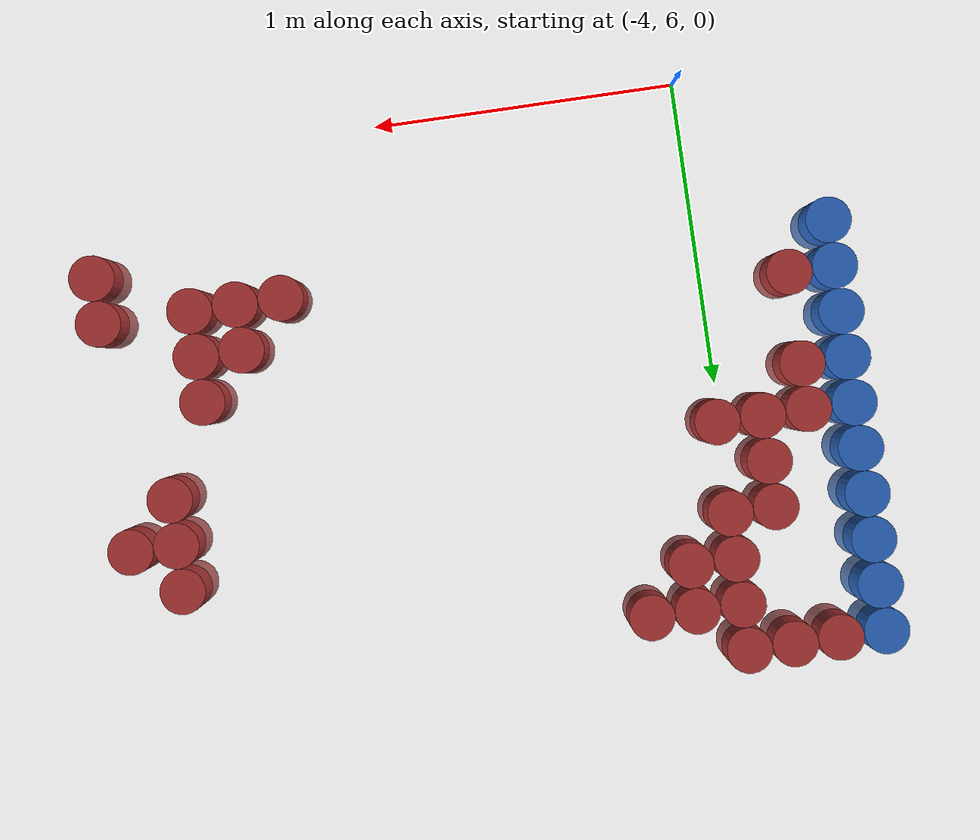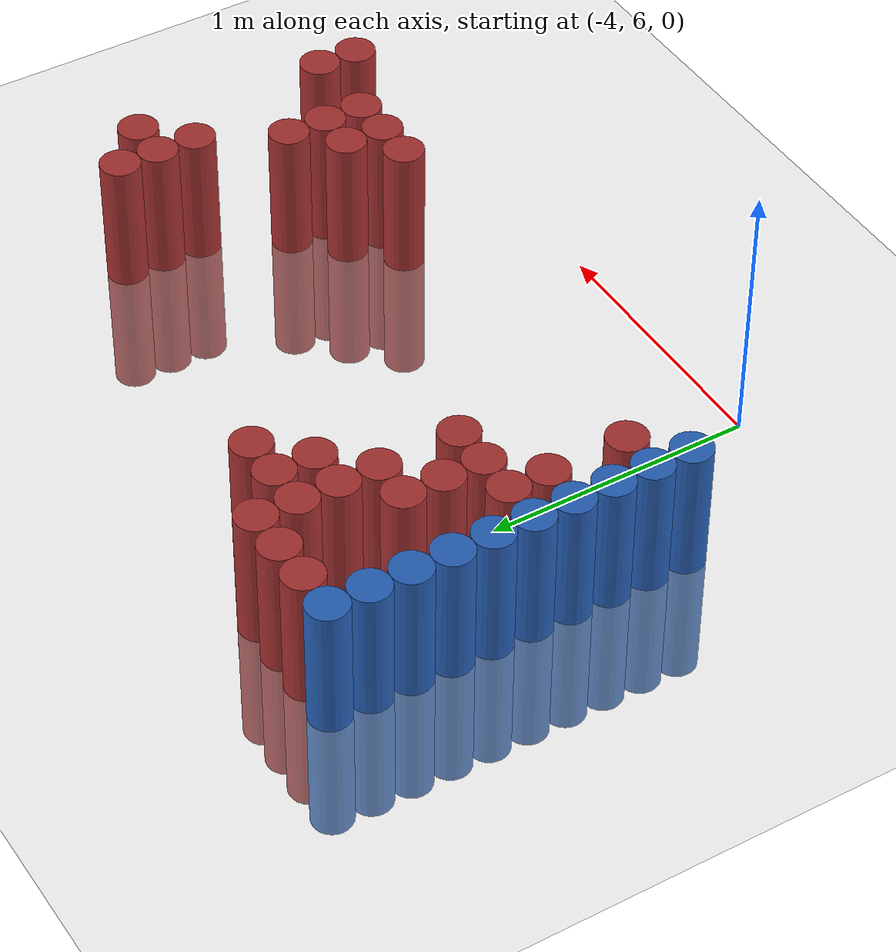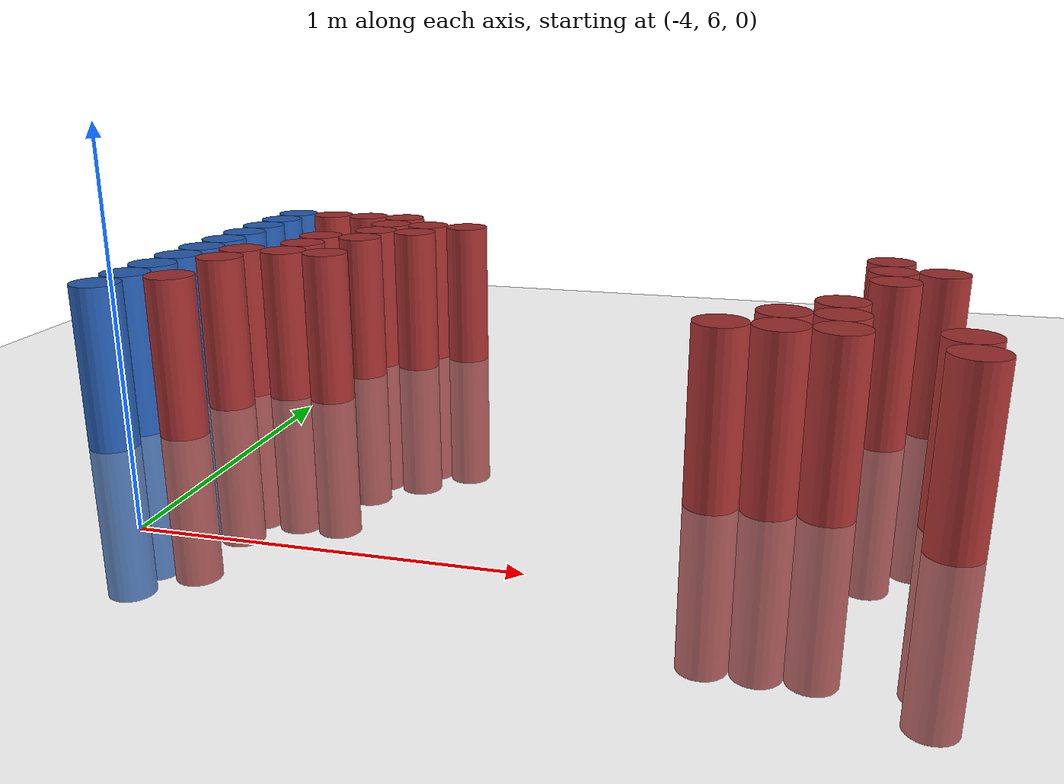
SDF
<sdf version="1.6">
 <world name="default">
  <model name="ground_plane">
   <static>1</static>
   <link name="link">
    <collision name="collision">
     <geometry><plane><normal>0 0 1</normal><size>100 100</size></plane></geometry>
     <surface><friction><ode><mu>100</mu><mu2>50</mu2></ode></friction></surface>
    </collision>
    <visual name="visual">
     <cast_shadows>0</cast_shadows>
     <geometry><plane><normal>0 0 1</normal><size>100 100</size></plane></geometry>
     <material>
      <script><uri>file://media/materials/scripts/gazebo.material</uri><name>Gazebo/Grey</name></script>
     </material>
    </visual>
   </link>
  </model>
  <model name="unit_cylinder_105">
   <static>1</static>
   <pose>-4.425000 6.525000 0.000000 0.000000 0.000000 0.000000</pose>
   <link name="link">
    <inertial>
     <mass>1</mass>
     <inertia><ixx>0.145833</ixx><ixy>0</ixy><ixz>0</ixz><iyy>0.145833</iyy><iyz>0</iyz><izz>0.125</izz></inertia>
    </inertial>
    <collision name="collision">
     <geometry><cylinder><radius>0.075000</radius><length>1</length></cylinder></geometry>
    </collision>
    <visual name="visual">
     <geometry><cylinder><radius>0.075000</radius><length>1</length></cylinder></geometry>
     <material>
      <ambient>0.152000 0.379000 0.720000 1</ambient>
      <diffuse>0.152000 0.379000 0.720000 1</diffuse>
     </material>
     <material>
      <script><name>Gazebo/Grey</name><uri>file://media/materials/scripts/gazebo.material</uri></script>
     </material>
    </visual>
    <sensor name="sensor_contact" type="contact"><contact><collision>collision</collision></contact></sensor>
   </link>
   <plugin filename="gz-sim-touchplugin-system" name="gz::sim::systems::TouchPlugin">
    <target>robot</target>
    <namespace>robot</namespace>
    <time>0.001</time>
    <enabled>true</enabled>
   </plugin>
  </model>
  <model name="unit_cylinder_106">
   <static>1</static>
   <pose>-4.425000 6.675000 0.000000 0.000000 0.000000 0.000000</pose>
   <link name="link">
    <inertial>
     <mass>1</mass>
     <inertia><ixx>0.145833</ixx><ixy>0</ixy><ixz>0</ixz><iyy>0.145833</iyy><iyz>0</iyz><izz>0.125</izz></inertia>
    </inertial>
    <collision name="collision">
     <geometry><cylinder><radius>0.075000</radius><length>1</length></cylinder></geometry>
    </collision>
    <visual name="visual">
     <geometry><cylinder><radius>0.075000</radius><length>1</length></cylinder></geometry>
     <material>
      <ambient>0.152000 0.379000 0.720000 1</ambient>
      <diffuse>0.152000 0.379000 0.720000 1</diffuse>
     </material>
     <material>
      <script><name>Gazebo/Grey</name><uri>file://media/materials/scripts/gazebo.material</uri></script>
     </material>
    </visual>
    <sensor name="sensor_contact" type="contact"><contact><collision>collision</collision></contact></sensor>
   </link>
   <plugin filename="gz-sim-touchplugin-system" name="gz::sim::systems::TouchPlugin">
    <target>robot</target>
    <namespace>robot</namespace>
    <time>0.001</time>
    <enabled>true</enabled>
   </plugin>
  </model>
  <model name="unit_cylinder_107">
   <static>1</static>
   <pose>-4.425000 6.825000 0.000000 0.000000 0.000000 0.000000</pose>
   <link name="link">
    <inertial>
     <mass>1</mass>
     <inertia><ixx>0.145833</ixx><ixy>0</ixy><ixz>0</ixz><iyy>0.145833</iyy><iyz>0</iyz><izz>0.125</izz></inertia>
    </inertial>
    <collision name="collision">
     <geometry><cylinder><radius>0.075000</radius><length>1</length></cylinder></geometry>
    </collision>
    <visual name="visual">
     <geometry><cylinder><radius>0.075000</radius><length>1</length></cylinder></geometry>
     <material>
      <ambient>0.152000 0.379000 0.720000 1</ambient>
      <diffuse>0.152000 0.379000 0.720000 1</diffuse>
     </material>
     <material>
      <script><name>Gazebo/Grey</name><uri>file://media/materials/scripts/gazebo.material</uri></script>
     </material>
    </visual>
    <sensor name="sensor_contact" type="contact"><contact><collision>collision</collision></contact></sensor>
   </link>
   <plugin filename="gz-sim-touchplugin-system" name="gz::sim::systems::TouchPlugin">
    <target>robot</target>
    <namespace>robot</namespace>
    <time>0.001</time>
    <enabled>true</enabled>
   </plugin>
  </model>
  <model name="unit_cylinder_108">
   <static>1</static>
   <pose>-4.425000 6.975000 0.000000 0.000000 0.000000 0.000000</pose>
   <link name="link">
    <inertial>
     <mass>1</mass>
     <inertia><ixx>0.145833</ixx><ixy>0</ixy><ixz>0</ixz><iyy>0.145833</iyy><iyz>0</iyz><izz>0.125</izz></inertia>
    </inertial>
    <collision name="collision">
     <geometry><cylinder><radius>0.075000</radius><length>1</length></cylinder></geometry>
    </collision>
    <visual name="visual">
     <geometry><cylinder><radius>0.075000</radius><length>1</length></cylinder></geometry>
     <material>
      <ambient>0.152000 0.379000 0.720000 1</ambient>
      <diffuse>0.152000 0.379000 0.720000 1</diffuse>
     </material>
     <material>
      <script><name>Gazebo/Grey</name><uri>file://media/materials/scripts/gazebo.material</uri></script>
     </material>
    </visual>
    <sensor name="sensor_contact" type="contact"><contact><collision>collision</collision></contact></sensor>
   </link>
   <plugin filename="gz-sim-touchplugin-system" name="gz::sim::systems::TouchPlugin">
    <target>robot</target>
    <namespace>robot</namespace>
    <time>0.001</time>
    <enabled>true</enabled>
   </plugin>
  </model>
  <model name="unit_cylinder_109">
   <static>1</static>
   <pose>-4.425000 7.125000 0.000000 0.000000 0.000000 0.000000</pose>
   <link name="link">
    <inertial>
     <mass>1</mass>
     <inertia><ixx>0.145833</ixx><ixy>0</ixy><ixz>0</ixz><iyy>0.145833</iyy><iyz>0</iyz><izz>0.125</izz></inertia>
    </inertial>
    <collision name="collision">
     <geometry><cylinder><radius>0.075000</radius><length>1</length></cylinder></geometry>
    </collision>
    <visual name="visual">
     <geometry><cylinder><radius>0.075000</radius><length>1</length></cylinder></geometry>
     <material>
      <ambient>0.152000 0.379000 0.720000 1</ambient>
      <diffuse>0.152000 0.379000 0.720000 1</diffuse>
     </material>
     <material>
      <script><name>Gazebo/Grey</name><uri>file://media/materials/scripts/gazebo.material</uri></script>
     </material>
    </visual>
    <sensor name="sensor_contact" type="contact"><contact><collision>collision</collision></contact></sensor>
   </link>
   <plugin filename="gz-sim-touchplugin-system" name="gz::sim::systems::TouchPlugin">
    <target>robot</target>
    <namespace>robot</namespace>
    <time>0.001</time>
    <enabled>true</enabled>
   </plugin>
  </model>
  <model name="unit_cylinder_110">
   <static>1</static>
   <pose>-4.425000 7.275000 0.000000 0.000000 0.000000 0.000000</pose>
   <link name="link">
    <inertial>
     <mass>1</mass>
     <inertia><ixx>0.145833</ixx><ixy>0</ixy><ixz>0</ixz><iyy>0.145833</iyy><iyz>0</iyz><izz>0.125</izz></inertia>
    </inertial>
    <collision name="collision">
     <geometry><cylinder><radius>0.075000</radius><length>1</length></cylinder></geometry>
    </collision>
    <visual name="visual">
     <geometry><cylinder><radius>0.075000</radius><length>1</length></cylinder></geometry>
     <material>
      <ambient>0.152000 0.379000 0.720000 1</ambient>
      <diffuse>0.152000 0.379000 0.720000 1</diffuse>
     </material>
     <material>
      <script><name>Gazebo/Grey</name><uri>file://media/materials/scripts/gazebo.material</uri></script>
     </material>
    </visual>
    <sensor name="sensor_contact" type="contact"><contact><collision>collision</collision></contact></sensor>
   </link>
   <plugin filename="gz-sim-touchplugin-system" name="gz::sim::systems::TouchPlugin">
    <target>robot</target>
    <namespace>robot</namespace>
    <time>0.001</time>
    <enabled>true</enabled>
   </plugin>
  </model>
  <model name="unit_cylinder_111">
   <static>1</static>
   <pose>-4.425000 7.425000 0.000000 0.000000 0.000000 0.000000</pose>
   <link name="link">
    <inertial>
     <mass>1</mass>
     <inertia><ixx>0.145833</ixx><ixy>0</ixy><ixz>0</ixz><iyy>0.145833</iyy><iyz>0</iyz><izz>0.125</izz></inertia>
    </inertial>
    <collision name="collision">
     <geometry><cylinder><radius>0.075000</radius><length>1</length></cylinder></geometry>
    </collision>
    <visual name="visual">
     <geometry><cylinder><radius>0.075000</radius><length>1</length></cylinder></geometry>
     <material>
      <ambient>0.152000 0.379000 0.720000 1</ambient>
      <diffuse>0.152000 0.379000 0.720000 1</diffuse>
     </material>
     <material>
      <script><name>Gazebo/Grey</name><uri>file://media/materials/scripts/gazebo.material</uri></script>
     </material>
    </visual>
    <sensor name="sensor_contact" type="contact"><contact><collision>collision</collision></contact></sensor>
   </link>
   <plugin filename="gz-sim-touchplugin-system" name="gz::sim::systems::TouchPlugin">
    <target>robot</target>
    <namespace>robot</namespace>
    <time>0.001</time>
    <enabled>true</enabled>
   </plugin>
  </model>
  <model name="unit_cylinder_112">
   <static>1</static>
   <pose>-4.425000 7.575000 0.000000 0.000000 0.000000 0.000000</pose>
   <link name="link">
    <inertial>
     <mass>1</mass>
     <inertia><ixx>0.145833</ixx><ixy>0</ixy><ixz>0</ixz><iyy>0.145833</iyy><iyz>0</iyz><izz>0.125</izz></inertia>
    </inertial>
    <collision name="collision">
     <geometry><cylinder><radius>0.075000</radius><length>1</length></cylinder></geometry>
    </collision>
    <visual name="visual">
     <geometry><cylinder><radius>0.075000</radius><length>1</length></cylinder></geometry>
     <material>
      <ambient>0.152000 0.379000 0.720000 1</ambient>
      <diffuse>0.152000 0.379000 0.720000 1</diffuse>
     </material>
     <material>
      <script><name>Gazebo/Grey</name><uri>file://media/materials/scripts/gazebo.material</uri></script>
     </material>
    </visual>
    <sensor name="sensor_contact" type="contact"><contact><collision>collision</collision></contact></sensor>
   </link>
   <plugin filename="gz-sim-touchplugin-system" name="gz::sim::systems::TouchPlugin">
    <target>robot</target>
    <namespace>robot</namespace>
    <time>0.001</time>
    <enabled>true</enabled>
   </plugin>
  </model>
  <model name="unit_cylinder_113">
   <static>1</static>
   <pose>-4.425000 7.725000 0.000000 0.000000 0.000000 0.000000</pose>
   <link name="link">
    <inertial>
     <mass>1</mass>
     <inertia><ixx>0.145833</ixx><ixy>0</ixy><ixz>0</ixz><iyy>0.145833</iyy><iyz>0</iyz><izz>0.125</izz></inertia>
    </inertial>
    <collision name="collision">
     <geometry><cylinder><radius>0.075000</radius><length>1</length></cylinder></geometry>
    </collision>
    <visual name="visual">
     <geometry><cylinder><radius>0.075000</radius><length>1</length></cylinder></geometry>
     <material>
      <ambient>0.152000 0.379000 0.720000 1</ambient>
      <diffuse>0.152000 0.379000 0.720000 1</diffuse>
     </material>
     <material>
      <script><name>Gazebo/Grey</name><uri>file://media/materials/scripts/gazebo.material</uri></script>
     </material>
    </visual>
    <sensor name="sensor_contact" type="contact"><contact><collision>collision</collision></contact></sensor>
   </link>
   <plugin filename="gz-sim-touchplugin-system" name="gz::sim::systems::TouchPlugin">
    <target>robot</target>
    <namespace>robot</namespace>
    <time>0.001</time>
    <enabled>true</enabled>
   </plugin>
  </model>
  <model name="unit_cylinder_114">
   <static>1</static>
   <pose>-4.425000 7.875000 0.000000 0.000000 0.000000 0.000000</pose>
   <link name="link">
    <inertial>
     <mass>1</mass>
     <inertia><ixx>0.145833</ixx><ixy>0</ixy><ixz>0</ixz><iyy>0.145833</iyy><iyz>0</iyz><izz>0.125</izz></inertia>
    </inertial>
    <collision name="collision">
     <geometry><cylinder><radius>0.075000</radius><length>1</length></cylinder></geometry>
    </collision>
    <visual name="visual">
     <geometry><cylinder><radius>0.075000</radius><length>1</length></cylinder></geometry>
     <material>
      <ambient>0.152000 0.379000 0.720000 1</ambient>
      <diffuse>0.152000 0.379000 0.720000 1</diffuse>
     </material>
     <material>
      <script><name>Gazebo/Grey</name><uri>file://media/materials/scripts/gazebo.material</uri></script>
     </material>
    </visual>
    <sensor name="sensor_contact" type="contact"><contact><collision>collision</collision></contact></sensor>
   </link>
   <plugin filename="gz-sim-touchplugin-system" name="gz::sim::systems::TouchPlugin">
    <target>robot</target>
    <namespace>robot</namespace>
    <time>0.001</time>
    <enabled>true</enabled>
   </plugin>
  </model>
  <model name="unit_cylinder_127">
   <static>1</static>
   <pose>-4.275000 6.675000 0.000000 0.000000 0.000000 0.000000</pose>
   <link name="link">
    <inertial>
     <mass>1</mass>
     <inertia><ixx>0.145833</ixx><ixy>0</ixy><ixz>0</ixz><iyy>0.145833</iyy><iyz>0</iyz><izz>0.125</izz></inertia>
    </inertial>
    <collision name="collision">
     <geometry><cylinder><radius>0.075000</radius><length>1</length></cylinder></geometry>
    </collision>
    <visual name="visual">
     <geometry><cylinder><radius>0.075000</radius><length>1</length></cylinder></geometry>
     <material>
      <ambient>0.648000 0.192000 0.192000 1</ambient>
      <diffuse>0.648000 0.192000 0.192000 1</diffuse>
     </material>
     <material>
      <script><name>Gazebo/Grey</name><uri>file://media/materials/scripts/gazebo.material</uri></script>
     </material>
    </visual>
    <sensor name="sensor_contact" type="contact"><contact><collision>collision</collision></contact></sensor>
   </link>
   <plugin filename="gz-sim-touchplugin-system" name="gz::sim::systems::TouchPlugin">
    <target>robot</target>
    <namespace>robot</namespace>
    <time>0.001</time>
    <enabled>true</enabled>
   </plugin>
  </model>
  <model name="unit_cylinder_128">
   <static>1</static>
   <pose>-4.275000 6.975000 0.000000 0.000000 0.000000 0.000000</pose>
   <link name="link">
    <inertial>
     <mass>1</mass>
     <inertia><ixx>0.145833</ixx><ixy>0</ixy><ixz>0</ixz><iyy>0.145833</iyy><iyz>0</iyz><izz>0.125</izz></inertia>
    </inertial>
    <collision name="collision">
     <geometry><cylinder><radius>0.075000</radius><length>1</length></cylinder></geometry>
    </collision>
    <visual name="visual">
     <geometry><cylinder><radius>0.075000</radius><length>1</length></cylinder></geometry>
     <material>
      <ambient>0.648000 0.192000 0.192000 1</ambient>
      <diffuse>0.648000 0.192000 0.192000 1</diffuse>
     </material>
     <material>
      <script><name>Gazebo/Grey</name><uri>file://media/materials/scripts/gazebo.material</uri></script>
     </material>
    </visual>
    <sensor name="sensor_contact" type="contact"><contact><collision>collision</collision></contact></sensor>
   </link>
   <plugin filename="gz-sim-touchplugin-system" name="gz::sim::systems::TouchPlugin">
    <target>robot</target>
    <namespace>robot</namespace>
    <time>0.001</time>
    <enabled>true</enabled>
   </plugin>
  </model>
  <model name="unit_cylinder_129">
   <static>1</static>
   <pose>-4.275000 7.125000 0.000000 0.000000 0.000000 0.000000</pose>
   <link name="link">
    <inertial>
     <mass>1</mass>
     <inertia><ixx>0.145833</ixx><ixy>0</ixy><ixz>0</ixz><iyy>0.145833</iyy><iyz>0</iyz><izz>0.125</izz></inertia>
    </inertial>
    <collision name="collision">
     <geometry><cylinder><radius>0.075000</radius><length>1</length></cylinder></geometry>
    </collision>
    <visual name="visual">
     <geometry><cylinder><radius>0.075000</radius><length>1</length></cylinder></geometry>
     <material>
      <ambient>0.648000 0.192000 0.192000 1</ambient>
      <diffuse>0.648000 0.192000 0.192000 1</diffuse>
     </material>
     <material>
      <script><name>Gazebo/Grey</name><uri>file://media/materials/scripts/gazebo.material</uri></script>
     </material>
    </visual>
    <sensor name="sensor_contact" type="contact"><contact><collision>collision</collision></contact></sensor>
   </link>
   <plugin filename="gz-sim-touchplugin-system" name="gz::sim::systems::TouchPlugin">
    <target>robot</target>
    <namespace>robot</namespace>
    <time>0.001</time>
    <enabled>true</enabled>
   </plugin>
  </model>
  <model name="unit_cylinder_130">
   <static>1</static>
   <pose>-4.275000 7.875000 0.000000 0.000000 0.000000 0.000000</pose>
   <link name="link">
    <inertial>
     <mass>1</mass>
     <inertia><ixx>0.145833</ixx><ixy>0</ixy><ixz>0</ixz><iyy>0.145833</iyy><iyz>0</iyz><izz>0.125</izz></inertia>
    </inertial>
    <collision name="collision">
     <geometry><cylinder><radius>0.075000</radius><length>1</length></cylinder></geometry>
    </collision>
    <visual name="visual">
     <geometry><cylinder><radius>0.075000</radius><length>1</length></cylinder></geometry>
     <material>
      <ambient>0.648000 0.192000 0.192000 1</ambient>
      <diffuse>0.648000 0.192000 0.192000 1</diffuse>
     </material>
     <material>
      <script><name>Gazebo/Grey</name><uri>file://media/materials/scripts/gazebo.material</uri></script>
     </material>
    </visual>
    <sensor name="sensor_contact" type="contact"><contact><collision>collision</collision></contact></sensor>
   </link>
   <plugin filename="gz-sim-touchplugin-system" name="gz::sim::systems::TouchPlugin">
    <target>robot</target>
    <namespace>robot</namespace>
    <time>0.001</time>
    <enabled>true</enabled>
   </plugin>
  </model>
  <model name="unit_cylinder_136">
   <static>1</static>
   <pose>-4.125000 7.125000 0.000000 0.000000 0.000000 0.000000</pose>
   <link name="link">
    <inertial>
     <mass>1</mass>
     <inertia><ixx>0.145833</ixx><ixy>0</ixy><ixz>0</ixz><iyy>0.145833</iyy><iyz>0</iyz><izz>0.125</izz></inertia>
    </inertial>
    <collision name="collision">
     <geometry><cylinder><radius>0.075000</radius><length>1</length></cylinder></geometry>
    </collision>
    <visual name="visual">
     <geometry><cylinder><radius>0.075000</radius><length>1</length></cylinder></geometry>
     <material>
      <ambient>0.648000 0.192000 0.192000 1</ambient>
      <diffuse>0.648000 0.192000 0.192000 1</diffuse>
     </material>
     <material>
      <script><name>Gazebo/Grey</name><uri>file://media/materials/scripts/gazebo.material</uri></script>
     </material>
    </visual>
    <sensor name="sensor_contact" type="contact"><contact><collision>collision</collision></contact></sensor>
   </link>
   <plugin filename="gz-sim-touchplugin-system" name="gz::sim::systems::TouchPlugin">
    <target>robot</target>
    <namespace>robot</namespace>
    <time>0.001</time>
    <enabled>true</enabled>
   </plugin>
  </model>
  <model name="unit_cylinder_137">
   <static>1</static>
   <pose>-4.125000 7.275000 0.000000 0.000000 0.000000 0.000000</pose>
   <link name="link">
    <inertial>
     <mass>1</mass>
     <inertia><ixx>0.145833</ixx><ixy>0</ixy><ixz>0</ixz><iyy>0.145833</iyy><iyz>0</iyz><izz>0.125</izz></inertia>
    </inertial>
    <collision name="collision">
     <geometry><cylinder><radius>0.075000</radius><length>1</length></cylinder></geometry>
    </collision>
    <visual name="visual">
     <geometry><cylinder><radius>0.075000</radius><length>1</length></cylinder></geometry>
     <material>
      <ambient>0.648000 0.192000 0.192000 1</ambient>
      <diffuse>0.648000 0.192000 0.192000 1</diffuse>
     </material>
     <material>
      <script><name>Gazebo/Grey</name><uri>file://media/materials/scripts/gazebo.material</uri></script>
     </material>
    </visual>
    <sensor name="sensor_contact" type="contact"><contact><collision>collision</collision></contact></sensor>
   </link>
   <plugin filename="gz-sim-touchplugin-system" name="gz::sim::systems::TouchPlugin">
    <target>robot</target>
    <namespace>robot</namespace>
    <time>0.001</time>
    <enabled>true</enabled>
   </plugin>
  </model>
  <model name="unit_cylinder_138">
   <static>1</static>
   <pose>-4.125000 7.425000 0.000000 0.000000 0.000000 0.000000</pose>
   <link name="link">
    <inertial>
     <mass>1</mass>
     <inertia><ixx>0.145833</ixx><ixy>0</ixy><ixz>0</ixz><iyy>0.145833</iyy><iyz>0</iyz><izz>0.125</izz></inertia>
    </inertial>
    <collision name="collision">
     <geometry><cylinder><radius>0.075000</radius><length>1</length></cylinder></geometry>
    </collision>
    <visual name="visual">
     <geometry><cylinder><radius>0.075000</radius><length>1</length></cylinder></geometry>
     <material>
      <ambient>0.648000 0.192000 0.192000 1</ambient>
      <diffuse>0.648000 0.192000 0.192000 1</diffuse>
     </material>
     <material>
      <script><name>Gazebo/Grey</name><uri>file://media/materials/scripts/gazebo.material</uri></script>
     </material>
    </visual>
    <sensor name="sensor_contact" type="contact"><contact><collision>collision</collision></contact></sensor>
   </link>
   <plugin filename="gz-sim-touchplugin-system" name="gz::sim::systems::TouchPlugin">
    <target>robot</target>
    <namespace>robot</namespace>
    <time>0.001</time>
    <enabled>true</enabled>
   </plugin>
  </model>
  <model name="unit_cylinder_139">
   <static>1</static>
   <pose>-4.125000 7.875000 0.000000 0.000000 0.000000 0.000000</pose>
   <link name="link">
    <inertial>
     <mass>1</mass>
     <inertia><ixx>0.145833</ixx><ixy>0</ixy><ixz>0</ixz><iyy>0.145833</iyy><iyz>0</iyz><izz>0.125</izz></inertia>
    </inertial>
    <collision name="collision">
     <geometry><cylinder><radius>0.075000</radius><length>1</length></cylinder></geometry>
    </collision>
    <visual name="visual">
     <geometry><cylinder><radius>0.075000</radius><length>1</length></cylinder></geometry>
     <material>
      <ambient>0.648000 0.192000 0.192000 1</ambient>
      <diffuse>0.648000 0.192000 0.192000 1</diffuse>
     </material>
     <material>
      <script><name>Gazebo/Grey</name><uri>file://media/materials/scripts/gazebo.material</uri></script>
     </material>
    </visual>
    <sensor name="sensor_contact" type="contact"><contact><collision>collision</collision></contact></sensor>
   </link>
   <plugin filename="gz-sim-touchplugin-system" name="gz::sim::systems::TouchPlugin">
    <target>robot</target>
    <namespace>robot</namespace>
    <time>0.001</time>
    <enabled>true</enabled>
   </plugin>
  </model>
  <model name="unit_cylinder_140">
   <static>1</static>
   <pose>-3.975000 7.125000 0.000000 0.000000 0.000000 0.000000</pose>
   <link name="link">
    <inertial>
     <mass>1</mass>
     <inertia><ixx>0.145833</ixx><ixy>0</ixy><ixz>0</ixz><iyy>0.145833</iyy><iyz>0</iyz><izz>0.125</izz></inertia>
    </inertial>
    <collision name="collision">
     <geometry><cylinder><radius>0.075000</radius><length>1</length></cylinder></geometry>
    </collision>
    <visual name="visual">
     <geometry><cylinder><radius>0.075000</radius><length>1</length></cylinder></geometry>
     <material>
      <ambient>0.648000 0.192000 0.192000 1</ambient>
      <diffuse>0.648000 0.192000 0.192000 1</diffuse>
     </material>
     <material>
      <script><name>Gazebo/Grey</name><uri>file://media/materials/scripts/gazebo.material</uri></script>
     </material>
    </visual>
    <sensor name="sensor_contact" type="contact"><contact><collision>collision</collision></contact></sensor>
   </link>
   <plugin filename="gz-sim-touchplugin-system" name="gz::sim::systems::TouchPlugin">
    <target>robot</target>
    <namespace>robot</namespace>
    <time>0.001</time>
    <enabled>true</enabled>
   </plugin>
  </model>
  <model name="unit_cylinder_141">
   <static>1</static>
   <pose>-3.975000 7.425000 0.000000 0.000000 0.000000 0.000000</pose>
   <link name="link">
    <inertial>
     <mass>1</mass>
     <inertia><ixx>0.145833</ixx><ixy>0</ixy><ixz>0</ixz><iyy>0.145833</iyy><iyz>0</iyz><izz>0.125</izz></inertia>
    </inertial>
    <collision name="collision">
     <geometry><cylinder><radius>0.075000</radius><length>1</length></cylinder></geometry>
    </collision>
    <visual name="visual">
     <geometry><cylinder><radius>0.075000</radius><length>1</length></cylinder></geometry>
     <material>
      <ambient>0.648000 0.192000 0.192000 1</ambient>
      <diffuse>0.648000 0.192000 0.192000 1</diffuse>
     </material>
     <material>
      <script><name>Gazebo/Grey</name><uri>file://media/materials/scripts/gazebo.material</uri></script>
     </material>
    </visual>
    <sensor name="sensor_contact" type="contact"><contact><collision>collision</collision></contact></sensor>
   </link>
   <plugin filename="gz-sim-touchplugin-system" name="gz::sim::systems::TouchPlugin">
    <target>robot</target>
    <namespace>robot</namespace>
    <time>0.001</time>
    <enabled>true</enabled>
   </plugin>
  </model>
  <model name="unit_cylinder_142">
   <static>1</static>
   <pose>-3.975000 7.575000 0.000000 0.000000 0.000000 0.000000</pose>
   <link name="link">
    <inertial>
     <mass>1</mass>
     <inertia><ixx>0.145833</ixx><ixy>0</ixy><ixz>0</ixz><iyy>0.145833</iyy><iyz>0</iyz><izz>0.125</izz></inertia>
    </inertial>
    <collision name="collision">
     <geometry><cylinder><radius>0.075000</radius><length>1</length></cylinder></geometry>
    </collision>
    <visual name="visual">
     <geometry><cylinder><radius>0.075000</radius><length>1</length></cylinder></geometry>
     <material>
      <ambient>0.648000 0.192000 0.192000 1</ambient>
      <diffuse>0.648000 0.192000 0.192000 1</diffuse>
     </material>
     <material>
      <script><name>Gazebo/Grey</name><uri>file://media/materials/scripts/gazebo.material</uri></script>
     </material>
    </visual>
    <sensor name="sensor_contact" type="contact"><contact><collision>collision</collision></contact></sensor>
   </link>
   <plugin filename="gz-sim-touchplugin-system" name="gz::sim::systems::TouchPlugin">
    <target>robot</target>
    <namespace>robot</namespace>
    <time>0.001</time>
    <enabled>true</enabled>
   </plugin>
  </model>
  <model name="unit_cylinder_143">
   <static>1</static>
   <pose>-3.975000 7.725000 0.000000 0.000000 0.000000 0.000000</pose>
   <link name="link">
    <inertial>
     <mass>1</mass>
     <inertia><ixx>0.145833</ixx><ixy>0</ixy><ixz>0</ixz><iyy>0.145833</iyy><iyz>0</iyz><izz>0.125</izz></inertia>
    </inertial>
    <collision name="collision">
     <geometry><cylinder><radius>0.075000</radius><length>1</length></cylinder></geometry>
    </collision>
    <visual name="visual">
     <geometry><cylinder><radius>0.075000</radius><length>1</length></cylinder></geometry>
     <material>
      <ambient>0.648000 0.192000 0.192000 1</ambient>
      <diffuse>0.648000 0.192000 0.192000 1</diffuse>
     </material>
     <material>
      <script><name>Gazebo/Grey</name><uri>file://media/materials/scripts/gazebo.material</uri></script>
     </material>
    </visual>
    <sensor name="sensor_contact" type="contact"><contact><collision>collision</collision></contact></sensor>
   </link>
   <plugin filename="gz-sim-touchplugin-system" name="gz::sim::systems::TouchPlugin">
    <target>robot</target>
    <namespace>robot</namespace>
    <time>0.001</time>
    <enabled>true</enabled>
   </plugin>
  </model>
  <model name="unit_cylinder_144">
   <static>1</static>
   <pose>-3.975000 7.875000 0.000000 0.000000 0.000000 0.000000</pose>
   <link name="link">
    <inertial>
     <mass>1</mass>
     <inertia><ixx>0.145833</ixx><ixy>0</ixy><ixz>0</ixz><iyy>0.145833</iyy><iyz>0</iyz><izz>0.125</izz></inertia>
    </inertial>
    <collision name="collision">
     <geometry><cylinder><radius>0.075000</radius><length>1</length></cylinder></geometry>
    </collision>
    <visual name="visual">
     <geometry><cylinder><radius>0.075000</radius><length>1</length></cylinder></geometry>
     <material>
      <ambient>0.648000 0.192000 0.192000 1</ambient>
      <diffuse>0.648000 0.192000 0.192000 1</diffuse>
     </material>
     <material>
      <script><name>Gazebo/Grey</name><uri>file://media/materials/scripts/gazebo.material</uri></script>
     </material>
    </visual>
    <sensor name="sensor_contact" type="contact"><contact><collision>collision</collision></contact></sensor>
   </link>
   <plugin filename="gz-sim-touchplugin-system" name="gz::sim::systems::TouchPlugin">
    <target>robot</target>
    <namespace>robot</namespace>
    <time>0.001</time>
    <enabled>true</enabled>
   </plugin>
  </model>
  <model name="unit_cylinder_145">
   <static>1</static>
   <pose>-3.825000 7.575000 0.000000 0.000000 0.000000 0.000000</pose>
   <link name="link">
    <inertial>
     <mass>1</mass>
     <inertia><ixx>0.145833</ixx><ixy>0</ixy><ixz>0</ixz><iyy>0.145833</iyy><iyz>0</iyz><izz>0.125</izz></inertia>
    </inertial>
    <collision name="collision">
     <geometry><cylinder><radius>0.075000</radius><length>1</length></cylinder></geometry>
    </collision>
    <visual name="visual">
     <geometry><cylinder><radius>0.075000</radius><length>1</length></cylinder></geometry>
     <material>
      <ambient>0.648000 0.192000 0.192000 1</ambient>
      <diffuse>0.648000 0.192000 0.192000 1</diffuse>
     </material>
     <material>
      <script><name>Gazebo/Grey</name><uri>file://media/materials/scripts/gazebo.material</uri></script>
     </material>
    </visual>
    <sensor name="sensor_contact" type="contact"><contact><collision>collision</collision></contact></sensor>
   </link>
   <plugin filename="gz-sim-touchplugin-system" name="gz::sim::systems::TouchPlugin">
    <target>robot</target>
    <namespace>robot</namespace>
    <time>0.001</time>
    <enabled>true</enabled>
   </plugin>
  </model>
  <model name="unit_cylinder_146">
   <static>1</static>
   <pose>-3.825000 7.725000 0.000000 0.000000 0.000000 0.000000</pose>
   <link name="link">
    <inertial>
     <mass>1</mass>
     <inertia><ixx>0.145833</ixx><ixy>0</ixy><ixz>0</ixz><iyy>0.145833</iyy><iyz>0</iyz><izz>0.125</izz></inertia>
    </inertial>
    <collision name="collision">
     <geometry><cylinder><radius>0.075000</radius><length>1</length></cylinder></geometry>
    </collision>
    <visual name="visual">
     <geometry><cylinder><radius>0.075000</radius><length>1</length></cylinder></geometry>
     <material>
      <ambient>0.648000 0.192000 0.192000 1</ambient>
      <diffuse>0.648000 0.192000 0.192000 1</diffuse>
     </material>
     <material>
      <script><name>Gazebo/Grey</name><uri>file://media/materials/scripts/gazebo.material</uri></script>
     </material>
    </visual>
    <sensor name="sensor_contact" type="contact"><contact><collision>collision</collision></contact></sensor>
   </link>
   <plugin filename="gz-sim-touchplugin-system" name="gz::sim::systems::TouchPlugin">
    <target>robot</target>
    <namespace>robot</namespace>
    <time>0.001</time>
    <enabled>true</enabled>
   </plugin>
  </model>
  <model name="unit_cylinder_148">
   <static>1</static>
   <pose>-3.675000 7.725000 0.000000 0.000000 0.000000 0.000000</pose>
   <link name="link">
    <inertial>
     <mass>1</mass>
     <inertia><ixx>0.145833</ixx><ixy>0</ixy><ixz>0</ixz><iyy>0.145833</iyy><iyz>0</iyz><izz>0.125</izz></inertia>
    </inertial>
    <collision name="collision">
     <geometry><cylinder><radius>0.075000</radius><length>1</length></cylinder></geometry>
    </collision>
    <visual name="visual">
     <geometry><cylinder><radius>0.075000</radius><length>1</length></cylinder></geometry>
     <material>
      <ambient>0.648000 0.192000 0.192000 1</ambient>
      <diffuse>0.648000 0.192000 0.192000 1</diffuse>
     </material>
     <material>
      <script><name>Gazebo/Grey</name><uri>file://media/materials/scripts/gazebo.material</uri></script>
     </material>
    </visual>
    <sensor name="sensor_contact" type="contact"><contact><collision>collision</collision></contact></sensor>
   </link>
   <plugin filename="gz-sim-touchplugin-system" name="gz::sim::systems::TouchPlugin">
    <target>robot</target>
    <namespace>robot</namespace>
    <time>0.001</time>
    <enabled>true</enabled>
   </plugin>
  </model>
  <model name="unit_cylinder_179">
   <static>1</static>
   <pose>-2.625000 6.525000 0.000000 0.000000 0.000000 0.000000</pose>
   <link name="link">
    <inertial>
     <mass>1</mass>
     <inertia><ixx>0.145833</ixx><ixy>0</ixy><ixz>0</ixz><iyy>0.145833</iyy><iyz>0</iyz><izz>0.125</izz></inertia>
    </inertial>
    <collision name="collision">
     <geometry><cylinder><radius>0.075000</radius><length>1</length></cylinder></geometry>
    </collision>
    <visual name="visual">
     <geometry><cylinder><radius>0.075000</radius><length>1</length></cylinder></geometry>
     <material>
      <ambient>0.648000 0.192000 0.192000 1</ambient>
      <diffuse>0.648000 0.192000 0.192000 1</diffuse>
     </material>
     <material>
      <script><name>Gazebo/Grey</name><uri>file://media/materials/scripts/gazebo.material</uri></script>
     </material>
    </visual>
    <sensor name="sensor_contact" type="contact"><contact><collision>collision</collision></contact></sensor>
   </link>
   <plugin filename="gz-sim-touchplugin-system" name="gz::sim::systems::TouchPlugin">
    <target>robot</target>
    <namespace>robot</namespace>
    <time>0.001</time>
    <enabled>true</enabled>
   </plugin>
  </model>
  <model name="unit_cylinder_182">
   <static>1</static>
   <pose>-2.475000 6.525000 0.000000 0.000000 0.000000 0.000000</pose>
   <link name="link">
    <inertial>
     <mass>1</mass>
     <inertia><ixx>0.145833</ixx><ixy>0</ixy><ixz>0</ixz><iyy>0.145833</iyy><iyz>0</iyz><izz>0.125</izz></inertia>
    </inertial>
    <collision name="collision">
     <geometry><cylinder><radius>0.075000</radius><length>1</length></cylinder></geometry>
    </collision>
    <visual name="visual">
     <geometry><cylinder><radius>0.075000</radius><length>1</length></cylinder></geometry>
     <material>
      <ambient>0.648000 0.192000 0.192000 1</ambient>
      <diffuse>0.648000 0.192000 0.192000 1</diffuse>
     </material>
     <material>
      <script><name>Gazebo/Grey</name><uri>file://media/materials/scripts/gazebo.material</uri></script>
     </material>
    </visual>
    <sensor name="sensor_contact" type="contact"><contact><collision>collision</collision></contact></sensor>
   </link>
   <plugin filename="gz-sim-touchplugin-system" name="gz::sim::systems::TouchPlugin">
    <target>robot</target>
    <namespace>robot</namespace>
    <time>0.001</time>
    <enabled>true</enabled>
   </plugin>
  </model>
  <model name="unit_cylinder_183">
   <static>1</static>
   <pose>-2.475000 6.675000 0.000000 0.000000 0.000000 0.000000</pose>
   <link name="link">
    <inertial>
     <mass>1</mass>
     <inertia><ixx>0.145833</ixx><ixy>0</ixy><ixz>0</ixz><iyy>0.145833</iyy><iyz>0</iyz><izz>0.125</izz></inertia>
    </inertial>
    <collision name="collision">
     <geometry><cylinder><radius>0.075000</radius><length>1</length></cylinder></geometry>
    </collision>
    <visual name="visual">
     <geometry><cylinder><radius>0.075000</radius><length>1</length></cylinder></geometry>
     <material>
      <ambient>0.648000 0.192000 0.192000 1</ambient>
      <diffuse>0.648000 0.192000 0.192000 1</diffuse>
     </material>
     <material>
      <script><name>Gazebo/Grey</name><uri>file://media/materials/scripts/gazebo.material</uri></script>
     </material>
    </visual>
    <sensor name="sensor_contact" type="contact"><contact><collision>collision</collision></contact></sensor>
   </link>
   <plugin filename="gz-sim-touchplugin-system" name="gz::sim::systems::TouchPlugin">
    <target>robot</target>
    <namespace>robot</namespace>
    <time>0.001</time>
    <enabled>true</enabled>
   </plugin>
  </model>
  <model name="unit_cylinder_185">
   <static>1</static>
   <pose>-2.325000 6.525000 0.000000 0.000000 0.000000 0.000000</pose>
   <link name="link">
    <inertial>
     <mass>1</mass>
     <inertia><ixx>0.145833</ixx><ixy>0</ixy><ixz>0</ixz><iyy>0.145833</iyy><iyz>0</iyz><izz>0.125</izz></inertia>
    </inertial>
    <collision name="collision">
     <geometry><cylinder><radius>0.075000</radius><length>1</length></cylinder></geometry>
    </collision>
    <visual name="visual">
     <geometry><cylinder><radius>0.075000</radius><length>1</length></cylinder></geometry>
     <material>
      <ambient>0.648000 0.192000 0.192000 1</ambient>
      <diffuse>0.648000 0.192000 0.192000 1</diffuse>
     </material>
     <material>
      <script><name>Gazebo/Grey</name><uri>file://media/materials/scripts/gazebo.material</uri></script>
     </material>
    </visual>
    <sensor name="sensor_contact" type="contact"><contact><collision>collision</collision></contact></sensor>
   </link>
   <plugin filename="gz-sim-touchplugin-system" name="gz::sim::systems::TouchPlugin">
    <target>robot</target>
    <namespace>robot</namespace>
    <time>0.001</time>
    <enabled>true</enabled>
   </plugin>
  </model>
  <model name="unit_cylinder_186">
   <static>1</static>
   <pose>-2.325000 6.675000 0.000000 0.000000 0.000000 0.000000</pose>
   <link name="link">
    <inertial>
     <mass>1</mass>
     <inertia><ixx>0.145833</ixx><ixy>0</ixy><ixz>0</ixz><iyy>0.145833</iyy><iyz>0</iyz><izz>0.125</izz></inertia>
    </inertial>
    <collision name="collision">
     <geometry><cylinder><radius>0.075000</radius><length>1</length></cylinder></geometry>
    </collision>
    <visual name="visual">
     <geometry><cylinder><radius>0.075000</radius><length>1</length></cylinder></geometry>
     <material>
      <ambient>0.648000 0.192000 0.192000 1</ambient>
      <diffuse>0.648000 0.192000 0.192000 1</diffuse>
     </material>
     <material>
      <script><name>Gazebo/Grey</name><uri>file://media/materials/scripts/gazebo.material</uri></script>
     </material>
    </visual>
    <sensor name="sensor_contact" type="contact"><contact><collision>collision</collision></contact></sensor>
   </link>
   <plugin filename="gz-sim-touchplugin-system" name="gz::sim::systems::TouchPlugin">
    <target>robot</target>
    <namespace>robot</namespace>
    <time>0.001</time>
    <enabled>true</enabled>
   </plugin>
  </model>
  <model name="unit_cylinder_187">
   <static>1</static>
   <pose>-2.325000 6.825000 0.000000 0.000000 0.000000 0.000000</pose>
   <link name="link">
    <inertial>
     <mass>1</mass>
     <inertia><ixx>0.145833</ixx><ixy>0</ixy><ixz>0</ixz><iyy>0.145833</iyy><iyz>0</iyz><izz>0.125</izz></inertia>
    </inertial>
    <collision name="collision">
     <geometry><cylinder><radius>0.075000</radius><length>1</length></cylinder></geometry>
    </collision>
    <visual name="visual">
     <geometry><cylinder><radius>0.075000</radius><length>1</length></cylinder></geometry>
     <material>
      <ambient>0.648000 0.192000 0.192000 1</ambient>
      <diffuse>0.648000 0.192000 0.192000 1</diffuse>
     </material>
     <material>
      <script><name>Gazebo/Grey</name><uri>file://media/materials/scripts/gazebo.material</uri></script>
     </material>
    </visual>
    <sensor name="sensor_contact" type="contact"><contact><collision>collision</collision></contact></sensor>
   </link>
   <plugin filename="gz-sim-touchplugin-system" name="gz::sim::systems::TouchPlugin">
    <target>robot</target>
    <namespace>robot</namespace>
    <time>0.001</time>
    <enabled>true</enabled>
   </plugin>
  </model>
  <model name="unit_cylinder_188">
   <static>1</static>
   <pose>-2.175000 7.125000 0.000000 0.000000 0.000000 0.000000</pose>
   <link name="link">
    <inertial>
     <mass>1</mass>
     <inertia><ixx>0.145833</ixx><ixy>0</ixy><ixz>0</ixz><iyy>0.145833</iyy><iyz>0</iyz><izz>0.125</izz></inertia>
    </inertial>
    <collision name="collision">
     <geometry><cylinder><radius>0.075000</radius><length>1</length></cylinder></geometry>
    </collision>
    <visual name="visual">
     <geometry><cylinder><radius>0.075000</radius><length>1</length></cylinder></geometry>
     <material>
      <ambient>0.648000 0.192000 0.192000 1</ambient>
      <diffuse>0.648000 0.192000 0.192000 1</diffuse>
     </material>
     <material>
      <script><name>Gazebo/Grey</name><uri>file://media/materials/scripts/gazebo.material</uri></script>
     </material>
    </visual>
    <sensor name="sensor_contact" type="contact"><contact><collision>collision</collision></contact></sensor>
   </link>
   <plugin filename="gz-sim-touchplugin-system" name="gz::sim::systems::TouchPlugin">
    <target>robot</target>
    <namespace>robot</namespace>
    <time>0.001</time>
    <enabled>true</enabled>
   </plugin>
  </model>
  <model name="unit_cylinder_189">
   <static>1</static>
   <pose>-2.175000 7.275000 0.000000 0.000000 0.000000 0.000000</pose>
   <link name="link">
    <inertial>
     <mass>1</mass>
     <inertia><ixx>0.145833</ixx><ixy>0</ixy><ixz>0</ixz><iyy>0.145833</iyy><iyz>0</iyz><izz>0.125</izz></inertia>
    </inertial>
    <collision name="collision">
     <geometry><cylinder><radius>0.075000</radius><length>1</length></cylinder></geometry>
    </collision>
    <visual name="visual">
     <geometry><cylinder><radius>0.075000</radius><length>1</length></cylinder></geometry>
     <material>
      <ambient>0.648000 0.192000 0.192000 1</ambient>
      <diffuse>0.648000 0.192000 0.192000 1</diffuse>
     </material>
     <material>
      <script><name>Gazebo/Grey</name><uri>file://media/materials/scripts/gazebo.material</uri></script>
     </material>
    </visual>
    <sensor name="sensor_contact" type="contact"><contact><collision>collision</collision></contact></sensor>
   </link>
   <plugin filename="gz-sim-touchplugin-system" name="gz::sim::systems::TouchPlugin">
    <target>robot</target>
    <namespace>robot</namespace>
    <time>0.001</time>
    <enabled>true</enabled>
   </plugin>
  </model>
  <model name="unit_cylinder_190">
   <static>1</static>
   <pose>-2.175000 7.425000 0.000000 0.000000 0.000000 0.000000</pose>
   <link name="link">
    <inertial>
     <mass>1</mass>
     <inertia><ixx>0.145833</ixx><ixy>0</ixy><ixz>0</ixz><iyy>0.145833</iyy><iyz>0</iyz><izz>0.125</izz></inertia>
    </inertial>
    <collision name="collision">
     <geometry><cylinder><radius>0.075000</radius><length>1</length></cylinder></geometry>
    </collision>
    <visual name="visual">
     <geometry><cylinder><radius>0.075000</radius><length>1</length></cylinder></geometry>
     <material>
      <ambient>0.648000 0.192000 0.192000 1</ambient>
      <diffuse>0.648000 0.192000 0.192000 1</diffuse>
     </material>
     <material>
      <script><name>Gazebo/Grey</name><uri>file://media/materials/scripts/gazebo.material</uri></script>
     </material>
    </visual>
    <sensor name="sensor_contact" type="contact"><contact><collision>collision</collision></contact></sensor>
   </link>
   <plugin filename="gz-sim-touchplugin-system" name="gz::sim::systems::TouchPlugin">
    <target>robot</target>
    <namespace>robot</namespace>
    <time>0.001</time>
    <enabled>true</enabled>
   </plugin>
  </model>
  <model name="unit_cylinder_191">
   <static>1</static>
   <pose>-2.025000 6.375000 0.000000 0.000000 0.000000 0.000000</pose>
   <link name="link">
    <inertial>
     <mass>1</mass>
     <inertia><ixx>0.145833</ixx><ixy>0</ixy><ixz>0</ixz><iyy>0.145833</iyy><iyz>0</iyz><izz>0.125</izz></inertia>
    </inertial>
    <collision name="collision">
     <geometry><cylinder><radius>0.075000</radius><length>1</length></cylinder></geometry>
    </collision>
    <visual name="visual">
     <geometry><cylinder><radius>0.075000</radius><length>1</length></cylinder></geometry>
     <material>
      <ambient>0.648000 0.192000 0.192000 1</ambient>
      <diffuse>0.648000 0.192000 0.192000 1</diffuse>
     </material>
     <material>
      <script><name>Gazebo/Grey</name><uri>file://media/materials/scripts/gazebo.material</uri></script>
     </material>
    </visual>
    <sensor name="sensor_contact" type="contact"><contact><collision>collision</collision></contact></sensor>
   </link>
   <plugin filename="gz-sim-touchplugin-system" name="gz::sim::systems::TouchPlugin">
    <target>robot</target>
    <namespace>robot</namespace>
    <time>0.001</time>
    <enabled>true</enabled>
   </plugin>
  </model>
  <model name="unit_cylinder_192">
   <static>1</static>
   <pose>-2.025000 6.525000 0.000000 0.000000 0.000000 0.000000</pose>
   <link name="link">
    <inertial>
     <mass>1</mass>
     <inertia><ixx>0.145833</ixx><ixy>0</ixy><ixz>0</ixz><iyy>0.145833</iyy><iyz>0</iyz><izz>0.125</izz></inertia>
    </inertial>
    <collision name="collision">
     <geometry><cylinder><radius>0.075000</radius><length>1</length></cylinder></geometry>
    </collision>
    <visual name="visual">
     <geometry><cylinder><radius>0.075000</radius><length>1</length></cylinder></geometry>
     <material>
      <ambient>0.648000 0.192000 0.192000 1</ambient>
      <diffuse>0.648000 0.192000 0.192000 1</diffuse>
     </material>
     <material>
      <script><name>Gazebo/Grey</name><uri>file://media/materials/scripts/gazebo.material</uri></script>
     </material>
    </visual>
    <sensor name="sensor_contact" type="contact"><contact><collision>collision</collision></contact></sensor>
   </link>
   <plugin filename="gz-sim-touchplugin-system" name="gz::sim::systems::TouchPlugin">
    <target>robot</target>
    <namespace>robot</namespace>
    <time>0.001</time>
    <enabled>true</enabled>
   </plugin>
  </model>
  <model name="unit_cylinder_193">
   <static>1</static>
   <pose>-2.025000 7.275000 0.000000 0.000000 0.000000 0.000000</pose>
   <link name="link">
    <inertial>
     <mass>1</mass>
     <inertia><ixx>0.145833</ixx><ixy>0</ixy><ixz>0</ixz><iyy>0.145833</iyy><iyz>0</iyz><izz>0.125</izz></inertia>
    </inertial>
    <collision name="collision">
     <geometry><cylinder><radius>0.075000</radius><length>1</length></cylinder></geometry>
    </collision>
    <visual name="visual">
     <geometry><cylinder><radius>0.075000</radius><length>1</length></cylinder></geometry>
     <material>
      <ambient>0.648000 0.192000 0.192000 1</ambient>
      <diffuse>0.648000 0.192000 0.192000 1</diffuse>
     </material>
     <material>
      <script><name>Gazebo/Grey</name><uri>file://media/materials/scripts/gazebo.material</uri></script>
     </material>
    </visual>
    <sensor name="sensor_contact" type="contact"><contact><collision>collision</collision></contact></sensor>
   </link>
   <plugin filename="gz-sim-touchplugin-system" name="gz::sim::systems::TouchPlugin">
    <target>robot</target>
    <namespace>robot</namespace>
    <time>0.001</time>
    <enabled>true</enabled>
   </plugin>
  </model>
 </world>
</sdf>
